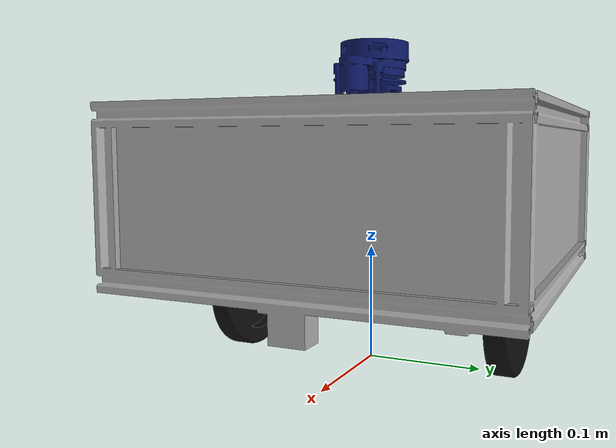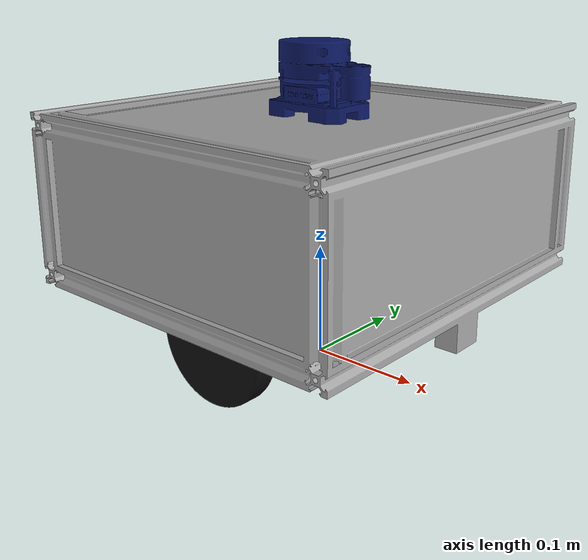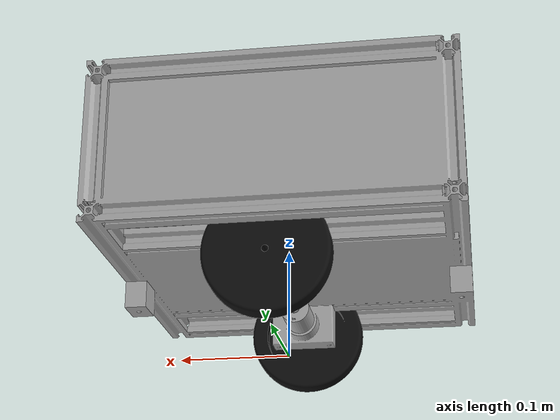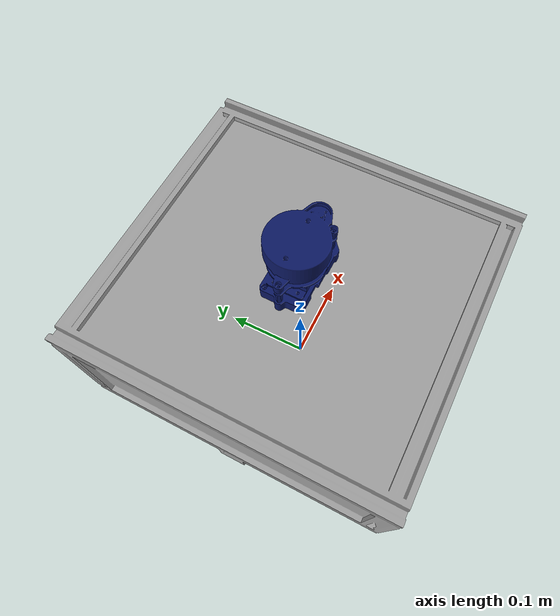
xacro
<?xml version="1.0"?>
<robot name="leo" xmlns:xacro="http://ros.org/wiki/xacro">
  <xacro:include filename="$(find leo)/urdf/materials.xacro"/>

  <link name="base_footprint"/>

  <link name="base_link">
    <visual>
      <origin xyz="0 0 -0.055" rpy="0 0 0"/>
      <geometry>
        <mesh filename="package://leo/meshes/base_link.stl" scale="0.001 0.001 0.001"/>
      </geometry>
      <material name="base_light_gray"/>
    </visual>
    <collision>
      <origin xyz="0 0 0" rpy="0 0 0"/>
      <geometry>
        <box size="0.45 0.35 0.10"/>
      </geometry>
    </collision>
    <inertial>
      <origin xyz="0 0 0" rpy="0 0 0"/>
      <mass value="12.0"/>
      <inertia ixx="0.25" iyy="0.35" izz="0.45"
               ixy="0.0" ixz="0.0" iyz="0.0"/>
    </inertial>
  </link>

  <joint name="base_joint" type="fixed">
    <parent link="base_footprint"/>
    <child link="base_link"/>
    <origin xyz="0 0 0.055" rpy="0 0 0"/>
  </joint>

  <link name="wheel_left_link">
    <visual>
      <origin xyz="0 0 0" rpy="0 0 0"/>
      <geometry>
        <mesh filename="package://leo/meshes/wheel_left_link.stl" scale="0.001 0.001 0.001"/>
      </geometry>
      <material name="wheel_rubber_black"/>
    </visual>
    <collision>
      <origin xyz="0 0 0" rpy="1.5708 0 0"/>
      <geometry>
        <cylinder radius="0.055" length="0.03"/>
      </geometry>
    </collision>
    <inertial>
      <origin xyz="0 0 0" rpy="0 0 0"/>
      <mass value="1.0"/>
      <inertia ixx="0.001" iyy="0.001" izz="0.001"
               ixy="0.0" ixz="0.0" iyz="0.0"/>
    </inertial>
  </link>

  <joint name="wheel_left_joint" type="continuous">
    <parent link="base_link"/>
    <child link="wheel_left_link"/>
    <origin xyz="0 0.135 0" rpy="0 0 0"/>
    <axis xyz="0 1 0"/>
  </joint>

  <link name="wheel_right_link">
    <visual>
      <origin xyz="0 0 0" rpy="0 0 0"/>
      <geometry>
        <mesh filename="package://leo/meshes/wheel_right_link.stl" scale="0.001 0.001 0.001"/>
      </geometry>
      <material name="wheel_rubber_black"/>
    </visual>
    <collision>
      <origin xyz="0 0 0" rpy="1.5708 0 0"/>
      <geometry>
        <cylinder radius="0.055" length="0.03"/>
      </geometry>
    </collision>
    <inertial>
      <origin xyz="0 0 0" rpy="0 0 0"/>
      <mass value="1.0"/>
      <inertia ixx="0.001" iyy="0.001" izz="0.001"
               ixy="0.0" ixz="0.0" iyz="0.0"/>
    </inertial>
  </link>

  <joint name="wheel_right_joint" type="continuous">
    <parent link="base_link"/>
    <child link="wheel_right_link"/>
    <origin xyz="0 -0.135 0" rpy="0 0 0"/>
    <axis xyz="0 1 0"/>
  </joint>

  <link name="lidar_link">
    <visual>
      <origin xyz="0 0 0" rpy="0 0 0"/>
      <geometry>
        <mesh filename="package://leo/meshes/lidar_link.stl" scale="0.001 0.001 0.001"/>
      </geometry>
      <material name="lidar_dark_blue"/>
    </visual>
    <collision>
      <origin xyz="0 0 0" rpy="0 0 0"/>
      <geometry>
        <cylinder radius="0.04" length="0.06"/>
      </geometry>
    </collision>
    <inertial>
      <origin xyz="0 0 0" rpy="0 0 0"/>
      <mass value="0.3"/>
      <inertia ixx="0.0002" iyy="0.0002" izz="0.0002"
               ixy="0.0" ixz="0.0" iyz="0.0"/>
    </inertial>
  </link>

  <joint name="lidar_joint" type="fixed">
    <parent link="base_link"/>
    <child link="lidar_link"/>
    <origin xyz="0 0 0.169" rpy="0 0 0"/>
  </joint>

  <link name="caster_front_link">
    <collision>
      <origin xyz="0 0 0" rpy="0 0 0"/>
      <geometry>
        <sphere radius="0.025"/>
      </geometry>
    </collision>
    <inertial>
      <origin xyz="0 0 0" rpy="0 0 0"/>
      <mass value="0.1"/>
      <inertia ixx="0.0001" iyy="0.0001" izz="0.0001"
               ixy="0.0" ixz="0.0" iyz="0.0"/>
    </inertial>
  </link>

  <joint name="caster_front_joint" type="fixed">
    <parent link="base_link"/>
    <child link="caster_front_link"/>
    <origin xyz="0.14 0 -0.03" rpy="0 0 0"/>
  </joint>

  <link name="caster_back_link">
    <collision>
      <origin xyz="0 0 0" rpy="0 0 0"/>
      <geometry>
        <sphere radius="0.025"/>
      </geometry>
    </collision>
    <inertial>
      <origin xyz="0 0 0" rpy="0 0 0"/>
      <mass value="0.1"/>
      <inertia ixx="0.0001" iyy="0.0001" izz="0.0001"
               ixy="0.0" ixz="0.0" iyz="0.0"/>
    </inertial>
  </link>

  <joint name="caster_back_joint" type="fixed">
    <parent link="base_link"/>
    <child link="caster_back_link"/>
    <origin xyz="-0.16 0 -0.03" rpy="0 0 0"/>
  </joint>

  <!-- GAZEBO WHEEL FRICTION -->
  <gazebo reference="wheel_left_link">
    <mu1>10.0</mu1>
    <mu2>10.0</mu2>
    <kp>1000000.0</kp>
    <kd>1.0</kd>
  </gazebo>

  <gazebo reference="wheel_right_link">
    <mu1>10.0</mu1>
    <mu2>10.0</mu2>
    <kp>1000000.0</kp>
    <kd>1.0</kd>
  </gazebo>

  <!-- GAZEBO CASTER FRICTION -->
  <gazebo reference="caster_front_link">
    <mu1>0.0</mu1>
    <mu2>0.0</mu2>
    <kp>1000000.0</kp>
    <kd>1.0</kd>
  </gazebo>

  <gazebo reference="caster_back_link">
    <mu1>0.0</mu1>
    <mu2>0.0</mu2>
    <kp>1000000.0</kp>
    <kd>1.0</kd>
  </gazebo>

  <!-- GAZEBO DIFF DRIVE -->
  <gazebo>
    <plugin name="diff_drive" filename="libgazebo_ros_diff_drive.so">
      <ros>
        <remapping>cmd_vel:=/cmd_vel</remapping>
        <remapping>odom:=/odom</remapping>
      </ros>
      <left_joint>wheel_left_joint</left_joint>
      <right_joint>wheel_right_joint</right_joint>
      <wheel_separation>0.27</wheel_separation>
      <wheel_radius>0.055</wheel_radius>
      <max_wheel_torque>20</max_wheel_torque>
      <max_wheel_acceleration>1.0</max_wheel_acceleration>
      <publish_odom>true</publish_odom>
      <publish_odom_tf>true</publish_odom_tf>
      <publish_wheel_tf>true</publish_wheel_tf>
      <odometry_frame>odom</odometry_frame>
      <robot_base_frame>base_link</robot_base_frame>
    </plugin>
  </gazebo>

  <!-- GAZEBO JOINT STATE PUBLISHER -->
  <gazebo>
    <plugin name="gazebo_ros_joint_state_publisher"
            filename="libgazebo_ros_joint_state_publisher.so">
      <update_rate>10</update_rate>
      <joint_name>wheel_left_joint</joint_name>
      <joint_name>wheel_right_joint</joint_name>
    </plugin>
  </gazebo>

  <!-- GAZEBO LIDAR -->
  <gazebo reference="lidar_link">
    <sensor type="ray" name="lidar">
      <pose>0 0 0 0 0 0</pose>
      <visualize>true</visualize>
      <update_rate>10</update_rate>
      <ray>
        <scan>
          <horizontal>
            <samples>360</samples>
            <resolution>1</resolution>
            <min_angle>-3.1416</min_angle>
            <max_angle>3.1416</max_angle>
          </horizontal>
        </scan>
        <range>
          <min>0.12</min>
          <max>8.0</max>
          <resolution>0.01</resolution>
        </range>
        <noise>
          <type>gaussian</type>
          <mean>0.0</mean>
          <stddev>0.01</stddev>
        </noise>
      </ray>
      <plugin name="gazebo_ros_ray" filename="libgazebo_ros_ray_sensor.so">
        <ros>
          <remapping>~/out:=scan</remapping>
        </ros>
        <output_type>sensor_msgs/LaserScan</output_type>
        <frame_name>lidar_link</frame_name>
      </plugin>
    </sensor>
  </gazebo>

</robot>

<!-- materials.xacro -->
<robot xmlns:xacro="http://ros.org/wiki/xacro">

  <material name="base_light_gray">
    <color rgba="0.65 0.65 0.65 1.0"/>
  </material>

  <!-- ================= WHEEL MATERIALS ================= -->

  <!-- Main drive wheel (rubber) -->
  <material name="wheel_rubber_black">
    <color rgba="0.05 0.05 0.05 1.0"/>
  </material>

  <!-- Wheel rim / metal hub -->
  <material name="wheel_metal_gray">
    <color rgba="0.6 0.6 0.6 1.0"/>
  </material>

  <!-- ================= CASTER MATERIALS ================= -->

  <!-- Caster rubber wheel -->
  <material name="caster_rubber_black">
    <color rgba="0.08 0.08 0.08 1.0"/>
  </material>

  <!-- Caster metal bracket -->
  <material name="caster_metal_silver">
    <color rgba="0.75 0.75 0.78 1.0"/>
  </material>

  <!-- Caster bolt / axle -->
  <material name="caster_axle_gray">
    <color rgba="0.65 0.65 0.65 1.0"/>
  </material>

  <!-- ================= LIDAR MATERIALS ================= -->

  <!-- Lidar top housing (dark blue) -->
  <material name="lidar_dark_blue">
    <color rgba="0.05 0.10 0.40 1.0"/>
  </material>

  <!-- Lidar base / motor casing -->
  <material name="lidar_light_gray">
    <color rgba="0.8 0.8 0.8 1.0"/>
  </material>

  <!-- Lidar black ring -->
  <material name="lidar_black_ring">
    <color rgba="0.1 0.1 0.1 1.0"/>
  </material>

</robot>
